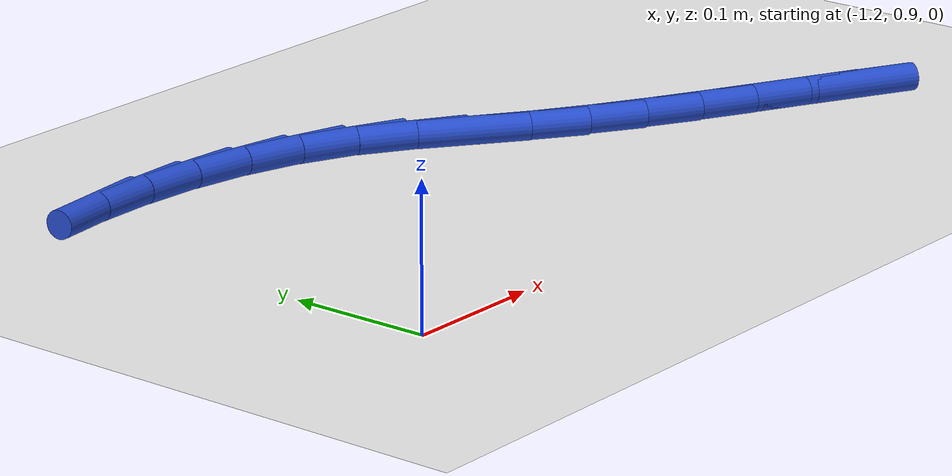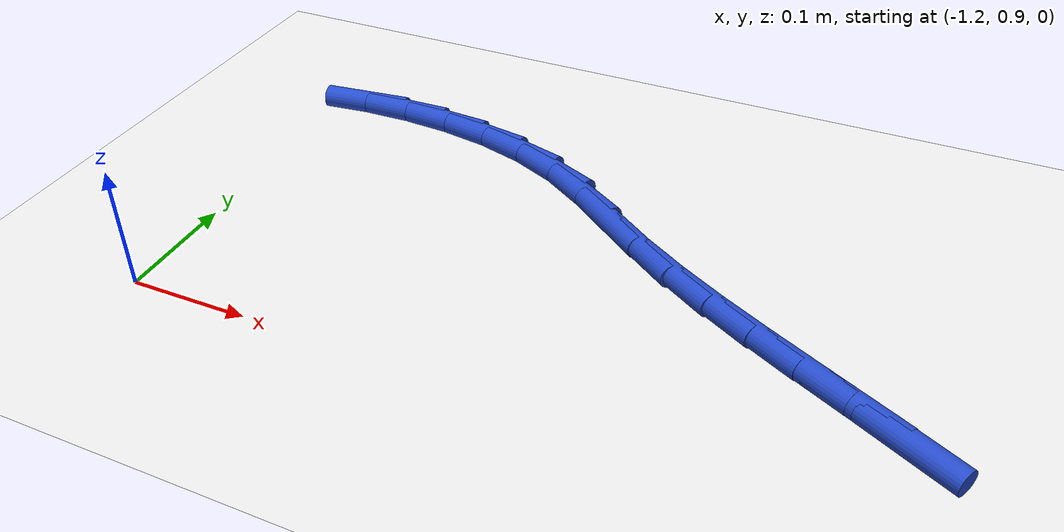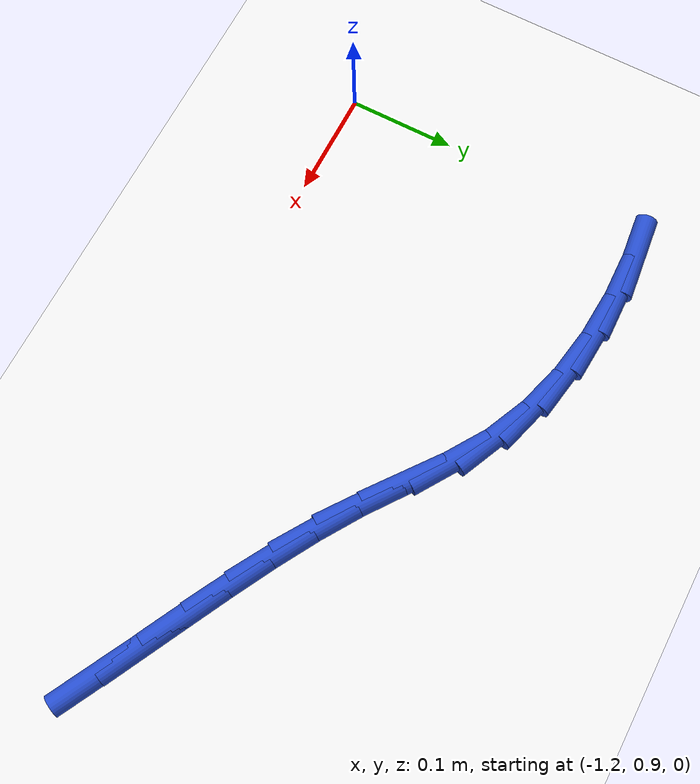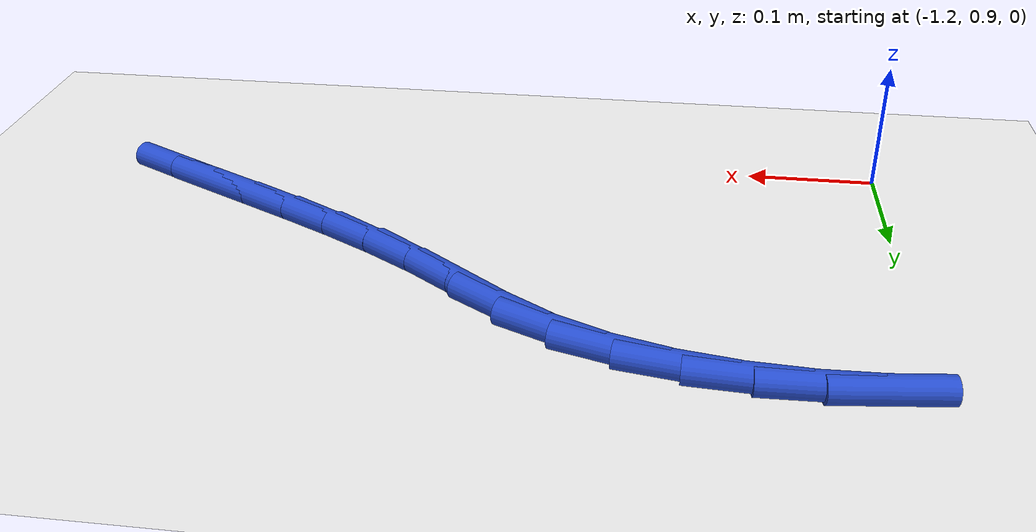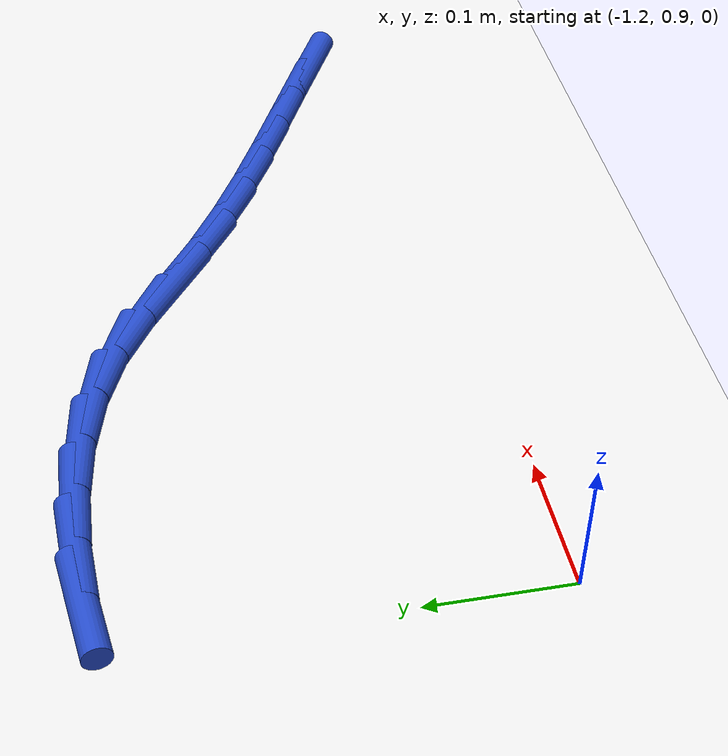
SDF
<sdf version="1.6">
 <world name="default">
  <model name="ground_plane">
   <static>1</static>
   <link name="link">
    <collision name="collision">
     <geometry><plane><normal>0 0 1</normal><size>100 100</size></plane></geometry>
     <surface><friction><ode><mu>100</mu><mu2>50</mu2></ode></friction></surface>
    </collision>
    <visual name="visual">
     <cast_shadows>0</cast_shadows>
     <geometry><plane><normal>0 0 1</normal><size>100 100</size></plane></geometry>
     <material>
      <script><uri>file://media/materials/scripts/gazebo.material</uri><name>Gazebo/WhiteGlow</name></script>
     </material>
    </visual>
   </link>
  </model>
  <model name="line">
   <link name="link_28">
    <pose>-0.631933201665996 0.9622386813665975 0.01 0 1.57 -0.48584645287184763</pose>
    <collision name="collision">
     <geometry><cylinder><radius>0.01</radius><length>0.08</length></cylinder></geometry>
    </collision>
    <visual name="visual">
     <material>
      <script><name>Gazebo/Blue</name><uri>file://media/materials/scripts/gazebo.material</uri></script>
     </material>
     <geometry><cylinder><radius>0.01</radius><length>0.08</length></cylinder></geometry>
    </visual>
   </link>
   <link name="link_29">
    <pose>-0.6699333136602075 0.9823051978356452 0.01 0 1.57 -0.47468371696506817</pose>
    <collision name="collision">
     <geometry><cylinder><radius>0.01</radius><length>0.08</length></cylinder></geometry>
    </collision>
    <visual name="visual">
     <material>
      <script><name>Gazebo/Blue</name><uri>file://media/materials/scripts/gazebo.material</uri></script>
     </material>
     <geometry><cylinder><radius>0.01</radius><length>0.08</length></cylinder></geometry>
    </visual>
   </link>
   <link name="link_30">
    <pose>-0.70800277313496 1.0018680364782344 0.01 0 1.57 -0.477651220388469</pose>
    <collision name="collision">
     <geometry><cylinder><radius>0.01</radius><length>0.08</length></cylinder></geometry>
    </collision>
    <visual name="visual">
     <material>
      <script><name>Gazebo/Blue</name><uri>file://media/materials/scripts/gazebo.material</uri></script>
     </material>
     <geometry><cylinder><radius>0.01</radius><length>0.08</length></cylinder></geometry>
    </visual>
   </link>
   <link name="link_31">
    <pose>-0.7458609874469772 1.021464549961938 0.01 0 1.57 -0.49491977417133604</pose>
    <collision name="collision">
     <geometry><cylinder><radius>0.01</radius><length>0.08</length></cylinder></geometry>
    </collision>
    <visual name="visual">
     <material>
      <script><name>Gazebo/Blue</name><uri>file://media/materials/scripts/gazebo.material</uri></script>
     </material>
     <geometry><cylinder><radius>0.01</radius><length>0.08</length></cylinder></geometry>
    </visual>
   </link>
   <link name="link_32">
    <pose>-0.7832273639529822 1.0416320909543288 0.01 0 1.57 -0.5266348512514808</pose>
    <collision name="collision">
     <geometry><cylinder><radius>0.01</radius><length>0.08</length></cylinder></geometry>
    </collision>
    <visual name="visual">
     <material>
      <script><name>Gazebo/Blue</name><uri>file://media/materials/scripts/gazebo.material</uri></script>
     </material>
     <geometry><cylinder><radius>0.01</radius><length>0.08</length></cylinder></geometry>
    </visual>
   </link>
   <link name="link_33">
    <pose>-0.8198213100096992 1.0629080121229801 0.01 0 1.57 -0.5728077115171814</pose>
    <collision name="collision">
     <geometry><cylinder><radius>0.01</radius><length>0.08</length></cylinder></geometry>
    </collision>
    <visual name="visual">
     <material>
      <script><name>Gazebo/Blue</name><uri>file://media/materials/scripts/gazebo.material</uri></script>
     </material>
     <geometry><cylinder><radius>0.01</radius><length>0.08</length></cylinder></geometry>
    </visual>
   </link>
   <link name="link_34">
    <pose>-0.855362232973851 1.085829666135465 0.01 0 1.57 -0.6316696101390062</pose>
    <collision name="collision">
     <geometry><cylinder><radius>0.01</radius><length>0.08</length></cylinder></geometry>
    </collision>
    <visual name="visual">
     <material>
      <script><name>Gazebo/Blue</name><uri>file://media/materials/scripts/gazebo.material</uri></script>
     </material>
     <geometry><cylinder><radius>0.01</radius><length>0.08</length></cylinder></geometry>
    </visual>
   </link>
   <link name="link_35">
    <pose>-0.8896026371467843 1.1108825151292092 0.01 0 1.57 -0.6529490936604984</pose>
    <collision name="collision">
     <geometry><cylinder><radius>0.01</radius><length>0.08</length></cylinder></geometry>
    </collision>
    <visual name="visual">
     <material>
      <script><name>Gazebo/Blue</name><uri>file://media/materials/scripts/gazebo.material</uri></script>
     </material>
     <geometry><cylinder><radius>0.01</radius><length>0.08</length></cylinder></geometry>
    </visual>
   </link>
   <link name="link_36">
    <pose>-0.9234371073739399 1.1367614280138056 0.01 0 1.57 -0.5758726116651455</pose>
    <collision name="collision">
     <geometry><cylinder><radius>0.01</radius><length>0.08</length></cylinder></geometry>
    </collision>
    <visual name="visual">
     <material>
      <script><name>Gazebo/Blue</name><uri>file://media/materials/scripts/gazebo.material</uri></script>
     </material>
     <geometry><cylinder><radius>0.01</radius><length>0.08</length></cylinder></geometry>
    </visual>
   </link>
   <link name="link_37">
    <pose>-0.9591648334395042 1.1599589143588405 0.01 0 1.57 -0.42508671259304603</pose>
    <collision name="collision">
     <geometry><cylinder><radius>0.01</radius><length>0.08</length></cylinder></geometry>
    </collision>
    <visual name="visual">
     <material>
      <script><name>Gazebo/Blue</name><uri>file://media/materials/scripts/gazebo.material</uri></script>
     </material>
     <geometry><cylinder><radius>0.01</radius><length>0.08</length></cylinder></geometry>
    </visual>
   </link>
   <link name="link_38">
    <pose>-0.9983924084643259 1.1777167523506915 0.01 0 1.57 -0.2852124911612364</pose>
    <collision name="collision">
     <geometry><cylinder><radius>0.01</radius><length>0.08</length></cylinder></geometry>
    </collision>
    <visual name="visual">
     <material>
      <script><name>Gazebo/Blue</name><uri>file://media/materials/scripts/gazebo.material</uri></script>
     </material>
     <geometry><cylinder><radius>0.01</radius><length>0.08</length></cylinder></geometry>
    </visual>
   </link>
   <link name="link_39">
    <pose>-1.0403196967751573 1.1900100994200227 0.01 0 1.57 -0.16745886402935106</pose>
    <collision name="collision">
     <geometry><cylinder><radius>0.01</radius><length>0.08</length></cylinder></geometry>
    </collision>
    <visual name="visual">
     <material>
      <script><name>Gazebo/Blue</name><uri>file://media/materials/scripts/gazebo.material</uri></script>
     </material>
     <geometry><cylinder><radius>0.01</radius><length>0.08</length></cylinder></geometry>
    </visual>
   </link>
   <link name="link_40">
    <pose>-1.0836832113096664 1.197340352211836 0.01 0 1.57 -0.06579378256976819</pose>
    <collision name="collision">
     <geometry><cylinder><radius>0.01</radius><length>0.08</length></cylinder></geometry>
    </collision>
    <visual name="visual">
     <material>
      <script><name>Gazebo/Blue</name><uri>file://media/materials/scripts/gazebo.material</uri></script>
     </material>
     <geometry><cylinder><radius>0.01</radius><length>0.08</length></cylinder></geometry>
    </visual>
   </link>
   <link name="link_41">
    <pose>-1.1272194650055205 1.2002089073711333 0.01 0 1.57 0.025715447271346066</pose>
    <collision name="collision">
     <geometry><cylinder><radius>0.01</radius><length>0.08</length></cylinder></geometry>
    </collision>
    <visual name="visual">
     <material>
      <script><name>Gazebo/Blue</name><uri>file://media/materials/scripts/gazebo.material</uri></script>
     </material>
     <geometry><cylinder><radius>0.01</radius><length>0.08</length></cylinder></geometry>
    </visual>
   </link>
   <link name="link_42">
    <pose>-1.1696649708003894 1.1991171615429173 0.01 0 1.57 0.11299402862763544</pose>
    <collision name="collision">
     <geometry><cylinder><radius>0.01</radius><length>0.08</length></cylinder></geometry>
    </collision>
    <visual name="visual">
     <material>
      <script><name>Gazebo/Blue</name><uri>file://media/materials/scripts/gazebo.material</uri></script>
     </material>
     <geometry><cylinder><radius>0.01</radius><length>0.08</length></cylinder></geometry>
    </visual>
   </link>
  </model>
 </world>
</sdf>
